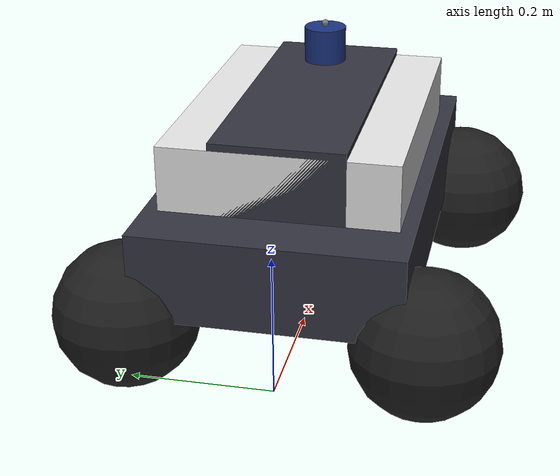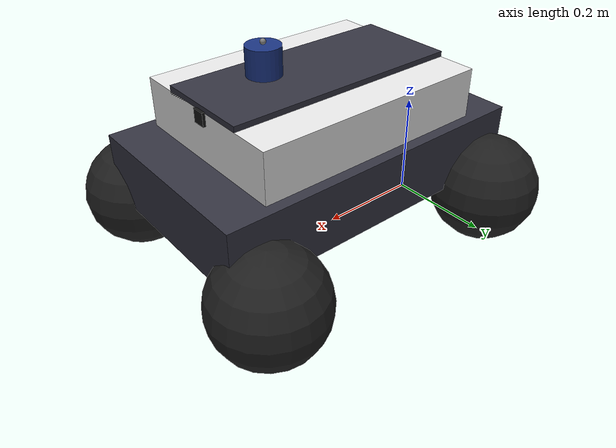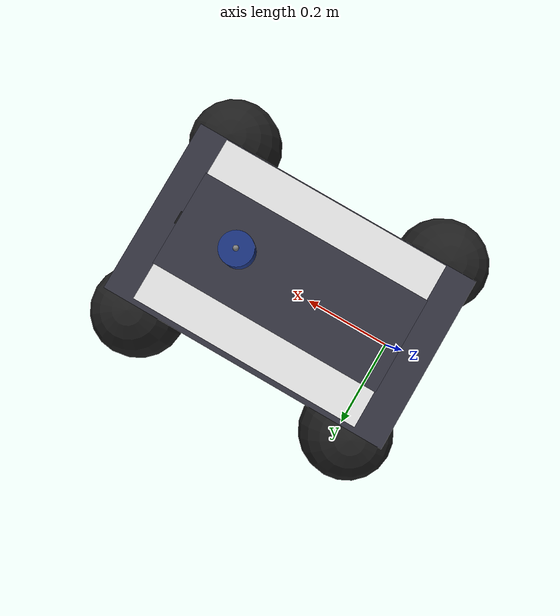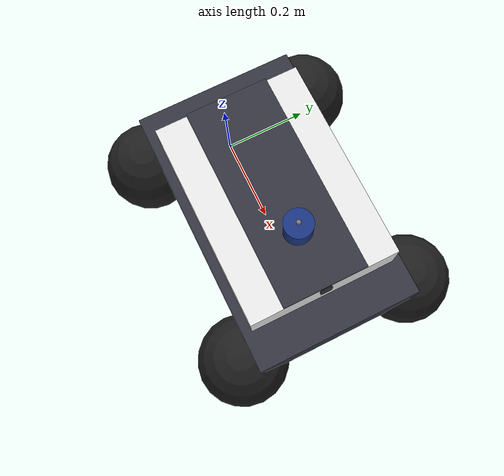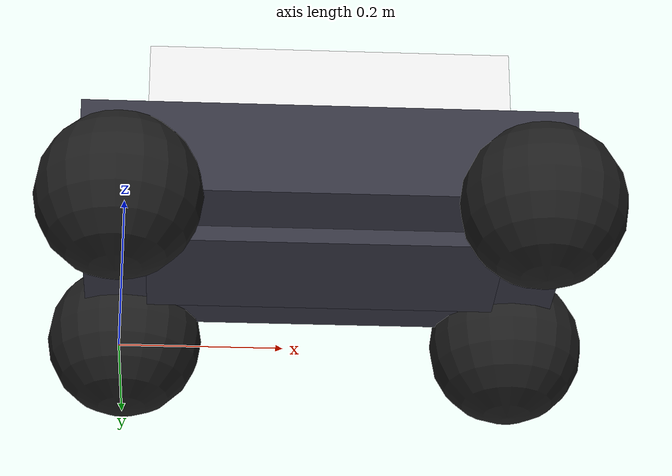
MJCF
<mujoco model="car_like_robot">

  <compiler angle="radian" autolimits="true"/>

  <option timestep="0.002" gravity="0 0 -9.81" integrator="RK4">
    <flag contact="enable"/>
  </option>

  <size nconmax="200" njmax="400"/>

  <default>
    <joint damping="0.3" frictionloss="0.02"/>
    <geom contype="1" conaffinity="1" friction="0.9 0.02 0.005"/>
  </default>

  <asset>
    <texture type="skybox" builtin="gradient" rgb1="0.4 0.5 0.6" rgb2="0.0 0.0 0.1" width="512" height="512"/>
    <material name="body_white" rgba="0.9 0.9 0.9 1"/>
    <material name="tire_black" rgba="0.12 0.12 0.12 1"/>
    <material name="chassis_dark" rgba="0.2 0.2 0.25 1"/>
    <material name="sensor_black" rgba="0.08 0.08 0.08 1"/>
    <material name="lidar_blue" rgba="0.1 0.2 0.5 1"/>
  </asset>

  <worldbody>
    <light name="sun" pos="5 5 10" dir="-1 -1 -2" diffuse="0.8 0.8 0.8" castshadow="true"/>
    <light name="ambient" pos="0 0 5" dir="0 0 -1" diffuse="0.4 0.4 0.4"/>

    <!-- Robot placed so wheels touch ground (z=0) -->
    <!-- Wheel center at z=0.1 (radius=0.1), base_footprint at z=0.1 -->
    <body name="base_footprint" pos="0 0 0.1">
      <freejoint name="base_freejoint"/>

      <body name="base_link" pos="0 0 0">

        <!-- Chassis box centered between axles -->
        <!-- Center at x=0.25 (midpoint of wheelbase), z=0.08 above axle -->
        <inertial pos="0.25 0 0.08" mass="15.0"
                  fullinertia="0.8 0.5 1.2 0 0 0"/>
        <geom name="chassis_lower" type="box" size="0.3 0.18 0.06"
              pos="0.25 0 0.08" material="chassis_dark"
              contype="0" conaffinity="0"/>
        <geom name="chassis_upper" type="box" size="0.22 0.16 0.05"
              pos="0.25 0 0.18" material="body_white"
              contype="0" conaffinity="0"/>
        <!-- Collision hull (narrow enough to avoid wheel spheres at y=±0.2, r=0.1) -->
        <geom name="chassis_col" type="box" size="0.22 0.09 0.12"
              pos="0.25 0 0.12" material="chassis_dark"/>

        <!-- IMU -->
        <site name="imu_site" pos="0.25 0 0.15"/>

        <!-- LiDAR (Livox Mid-360) -->
        <body name="lidar_mount" pos="0.35 0 0.28">
          <inertial pos="0 0 0" mass="0.3"
                    fullinertia="0.0002 0.0002 0.0002 0 0 0"/>
          <geom name="lidar_body" type="cylinder" size="0.03 0.025"
                material="lidar_blue" contype="0" conaffinity="0"/>
          <site name="lidar_site" pos="0 0 0.03"/>
        </body>

        <!-- Camera -->
        <body name="camera_mount" pos="0.45 0 0.22">
          <inertial pos="0 0 0" mass="0.1"
                    fullinertia="0.00005 0.00005 0.00005 0 0 0"/>
          <geom name="camera_body" type="box" size="0.025 0.012 0.012"
                material="sensor_black" contype="0" conaffinity="0"/>
          <camera name="rgb_camera" pos="0 0 0" fovy="60" resolution="640 480"/>
          <camera name="depth_camera" pos="0 0.02 0" fovy="60" resolution="640 480"/>
        </body>

        <!-- ===== REAR LEFT WHEEL (drive) ===== -->
        <body name="rear_left_wheel" pos="0 0.2 0">
          <joint name="rl_axle" type="hinge" axis="0 1 0"
                 damping="0.2" frictionloss="0.03"/>
          <inertial pos="0 0 0" mass="1.0"
                    fullinertia="0.002 0.002 0.001 0 0 0"/>
          <geom name="rl_tire" type="sphere" size="0.1"
                material="tire_black" friction="1.5 0.02 0.01"/>
        </body>

        <!-- ===== REAR RIGHT WHEEL (drive) ===== -->
        <body name="rear_right_wheel" pos="0 -0.2 0">
          <joint name="rr_axle" type="hinge" axis="0 1 0"
                 damping="0.2" frictionloss="0.03"/>
          <inertial pos="0 0 0" mass="1.0"
                    fullinertia="0.002 0.002 0.001 0 0 0"/>
          <geom name="rr_tire" type="sphere" size="0.1"
                material="tire_black" friction="1.5 0.02 0.01"/>
        </body>

        <!-- ===== FRONT STEERING ASSEMBLY ===== -->
        <body name="steering_assembly" pos="0.5 0 0">
          <joint name="steering_joint" type="hinge" axis="0 0 1"
                 damping="2.0" frictionloss="0.3" range="-0.785 0.785"/>
          <inertial pos="0 0 0" mass="0.3"
                    fullinertia="0.0003 0.0003 0.0003 0 0 0"/>

          <!-- Front Left Wheel (passive roll) -->
          <body name="front_left_wheel" pos="0 0.2 0">
            <joint name="fl_axle" type="hinge" axis="0 1 0"
                   damping="0.1" frictionloss="0.01"/>
            <inertial pos="0 0 0" mass="0.5"
                      fullinertia="0.001 0.001 0.0005 0 0 0"/>
            <geom name="fl_tire" type="sphere" size="0.1"
                  material="tire_black" friction="1.5 0.02 0.01"/>
          </body>

          <!-- Front Right Wheel (passive roll) -->
          <body name="front_right_wheel" pos="0 -0.2 0">
            <joint name="fr_axle" type="hinge" axis="0 1 0"
                   damping="0.1" frictionloss="0.01"/>
            <inertial pos="0 0 0" mass="0.5"
                      fullinertia="0.001 0.001 0.0005 0 0 0"/>
            <geom name="fr_tire" type="sphere" size="0.1"
                  material="tire_black" friction="1.5 0.02 0.01"/>
          </body>
        </body>

      </body>
    </body>
  </worldbody>

  <actuator>
    <motor name="rl_motor" joint="rl_axle" gear="1" ctrlrange="-15 15"/>
    <motor name="rr_motor" joint="rr_axle" gear="1" ctrlrange="-15 15"/>
    <position name="steer_act" joint="steering_joint" kp="80" kv="8"
              ctrlrange="-0.785 0.785"/>
  </actuator>

  <sensor>
    <accelerometer name="imu_accel" site="imu_site"/>
    <gyro name="imu_gyro" site="imu_site"/>
    <jointpos name="enc_rl" joint="rl_axle"/>
    <jointpos name="enc_rr" joint="rr_axle"/>
    <jointvel name="vel_rl" joint="rl_axle"/>
    <jointvel name="vel_rr" joint="rr_axle"/>
    <jointpos name="steer_angle" joint="steering_joint"/>
    <framepos name="base_pos" objtype="body" objname="base_link"/>
    <framequat name="base_quat" objtype="body" objname="base_link"/>
    <framelinvel name="base_linvel" objtype="body" objname="base_link"/>
    <frameangvel name="base_angvel" objtype="body" objname="base_link"/>
  </sensor>

</mujoco>
